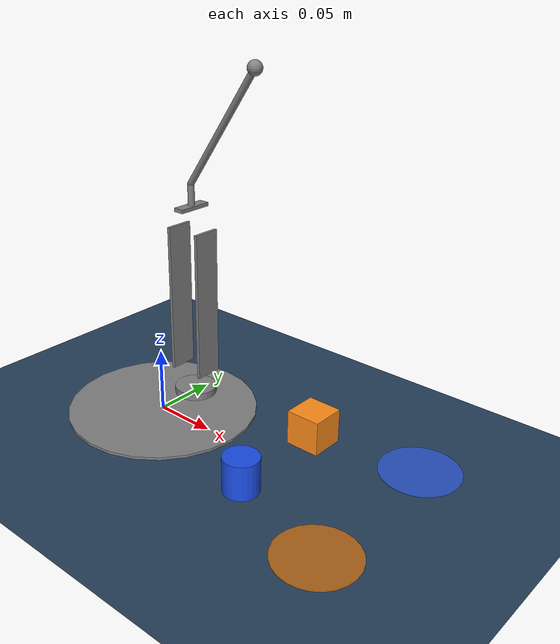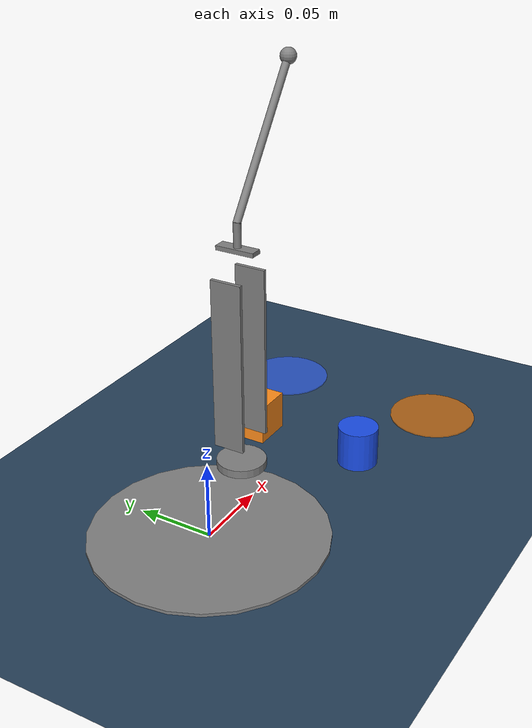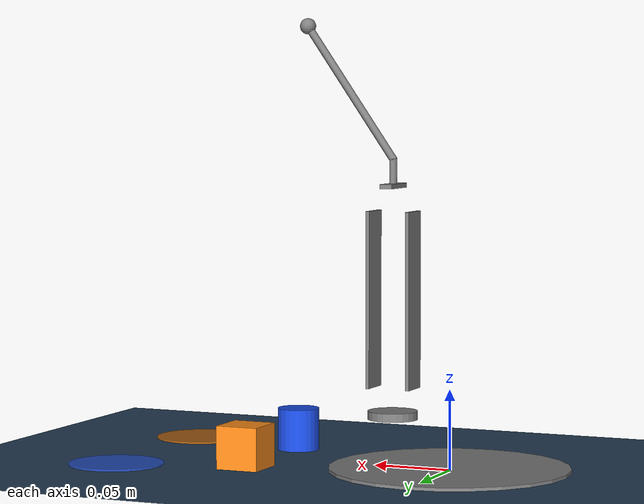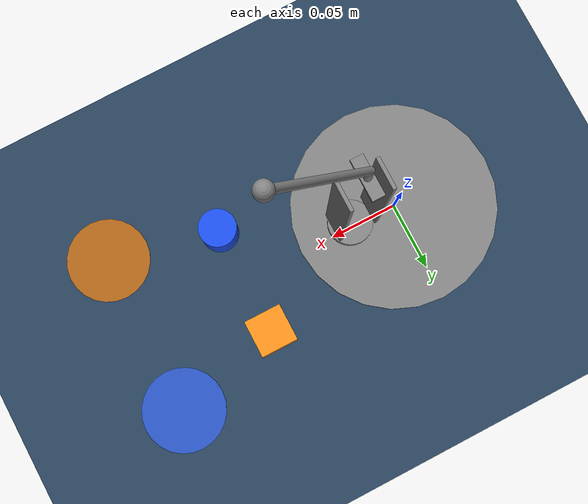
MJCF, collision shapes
<mujoco model="scene_sorting">
    <include file="robot.xml" />

    <visual>
        <headlight diffuse="0.6 0.6 0.6" ambient="0.3 0.3 0.3" specular="0 0 0" />
        <rgba haze="0.15 0.25 0.35 1" />
        <global azimuth="160" elevation="-20" />
    </visual>

    <asset>
        <texture type="skybox" builtin="gradient" rgb1="0.3 0.5 0.7" rgb2="0 0 0"
            width="512" height="3072" />
        <texture type="2d" name="groundplane" builtin="checker" mark="edge"
            rgb1="0.2 0.3 0.4" rgb2="0.1 0.2 0.3" markrgb="0.8 0.8 0.8"
            width="300" height="300" />
        <material name="groundplane" texture="groundplane" texuniform="true" texrepeat="5 5"
            reflectance="0.2" />
        <!-- Zone cible pour le cube (orange) -->
        <material name="goal_cube_mat" rgba="1 0.5 0.0 0.65" />
        <!-- Zone cible pour le cylindre (bleu) -->
        <material name="goal_cylinder_mat" rgba="0.2 0.4 1.0 0.65" />
        <!-- Cube PLA (orange) -->
        <material name="cube_mat" rgba="1 0.55 0.1 1" />
        <!-- Cylindre PLA (bleu) -->
        <material name="cylinder_mat" rgba="0.1 0.3 0.9 1" />
    </asset>

    <worldbody>
        <light pos="0 0 3.5" dir="0 0 -1" directional="true" />
        <geom name="floor" size="0 0 0.05" pos="0 0 0" type="plane"
            material="groundplane" />

        <!-- Zone cible du cube : disque orange -->
        <body name="goal_cube_marker" mocap="true" pos="0.20 -0.06 0.0005">
            <geom type="cylinder" size="0.03 0.0005" material="goal_cube_mat"
                contype="0" conaffinity="0" group="2" />
        </body>

        <!-- Zone cible du cylindre : disque bleu -->
        <body name="goal_cylinder_marker" mocap="true" pos="0.20 0.06 0.0005">
            <geom type="cylinder" size="0.03 0.0005" material="goal_cylinder_mat"
                contype="0" conaffinity="0" group="2" />
        </body>

        <!-- Cube 27x27x27 mm, masse 5 g (PLA) -->
        <body name="cube" pos="0.12 0.04 0.0135">
            <freejoint name="cube_free" />
            <inertial pos="0 0 0" mass="0.005"
                diaginertia="6.075e-7 6.075e-7 6.075e-7" />
            <geom name="cube_geom" type="box" size="0.0135 0.0135 0.0135"
                material="cube_mat" friction="0.6 0.02 0.001" />
        </body>

        <!-- Cylindre h=27mm, r=13.5mm, masse 5 g (PLA) -->
        <!-- Inertie cylindre plein : Ixx=Iyy = m*(3r²+h²)/12, Izz = m*r²/2 -->
        <!-- Ixx = 0.005*(3*0.0135² + 0.027²)/12 ≈ 5.316e-7 -->
        <!-- Izz = 0.005*0.0135²/2 ≈ 4.556e-7 -->
        <body name="cylinder" pos="0.12 -0.04 0.0135">
            <freejoint name="cylinder_free" />
            <inertial pos="0 0 0" mass="0.005"
                diaginertia="5.316e-7 5.316e-7 4.556e-7" />
            <geom name="cylinder_geom" type="cylinder" size="0.0135 0.0135"
                material="cylinder_mat" friction="0.6 0.02 0.001" />
        </body>
    </worldbody>
</mujoco>

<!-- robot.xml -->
<!-- Generated using onshape-to-robot -->
<!-- Onshape https://cad.onshape.com/documents/9cd2d37f10a20c963aa8c3b1/w/751e7ec4f0185e2cc133f396/e/9a387e7c90ee018179d50e3b -->
<mujoco model="3dofs_model">
  <compiler angle="radian" meshdir="." autolimits="true"/>
  <default>
    <default class="3dofs_model">
      <position kp="0.0834356288486003" forcerange="-0.413195026823429 0.413195026823429"/>
      <joint damping="0.030412360296431" frictionloss="0.017508851112988427" armature="0.001102777708135709"/>
      <default class="visual">
        <geom type="mesh" contype="0" conaffinity="0" group="2"/>
      </default>
      <default class="collision">
        <geom group="3"/>
      </default>
    </default>
  </default>
  <worldbody>
    <!-- Link base -->
    <body name="base" pos="0 0 0" quat="1 0 0 0" childclass="3dofs_model">
      <inertial pos="0.0139692 -3.07612e-05 0.0062903" mass="0.0693" fullinertia="7.26197e-05 0.000101787 0.000164149 -9.3971e-08 -1.04905e-05 -6.072e-09"/>
      <!-- Part disk_support -->
      <geom class="collision" pos="-1.3605e-08 0 0.00105" quat="0.707107 0 0 0.707107" type="cylinder" size="0.075 0.00105"/>
      <!-- Part base -->
      <!-- Part xl_320 -->
      <!-- Part base_parts -->
      <geom type="mesh" class="visual" pos="0.0139692 -3.07612e-05 0.0062903" quat="1 0 0 0" mesh="base_visual" material="base_visual_material"/>
      <!-- Link u_part -->
      <body name="u_part" pos="0.0378816 -0 0.0327" quat="0.707107 -0 0 -0.707107">
        <!-- Joint from base to u_part -->
        <joint axis="0 0 1" name="1" type="hinge" range="-2.6179938779914944 2.6179938779914944"/>
        <inertial pos="-7.99857e-05 2.24259e-06 0.00582339" mass="0.00516" fullinertia="7.13166e-07 1.22939e-06 1.09307e-06 -2.2e-11 6.8e-09 -1.91e-10"/>
        <!-- Part u_part -->
        <geom class="collision" pos="0 0 -0.0004" quat="1 0 0 -0" type="cylinder" size="0.0156339 0.0026"/>
        <!-- Part u_part_parts -->
        <geom type="mesh" class="visual" pos="-7.99857e-05 2.24259e-06 0.00582339" quat="0.707107 0 -0 0.707107" mesh="u_part_visual" material="u_part_visual_material"/>
        <!-- Link segment_1 -->
        <body name="segment_1" pos="-0.0149 0 0.0223" quat="0.5 0.5 0.5 0.5">
          <!-- Joint from u_part to segment_1 -->
          <joint axis="0 0 1" name="2" type="hinge" range="-1.570796326794894 1.5707963267948992"/>
          <inertial pos="0 0.049 0.0146105" mass="0.04268" fullinertia="7.27828e-05 4.90297e-06 7.35398e-05 -0 0 0"/>
          <!-- Part plate -->
          <geom class="collision" pos="-0.01315 0.049 0.015" quat="0.5 0.5 -0.5 -0.5" type="box" size="0.055 0.01 0.00115"/>
          <!-- Part xl_320_2 -->
          <!-- Part plate_2 -->
          <geom class="collision" pos="0.01315 0.049 0.015" quat="0.5 0.5 -0.5 -0.5" type="box" size="0.055 0.01 0.00115"/>
          <!-- Part xl_320_3 -->
          <!-- Part segment_1_parts -->
          <geom type="mesh" class="visual" pos="0 0.049 0.0146105" quat="0.707107 -0.707107 -0 0" mesh="segment_1_visual" material="segment_1_visual_material"/>
          <!-- Link end_effector_2 -->
          <body name="end_effector_2" pos="0 0.098 -0" quat="0 -1 0 0">
            <!-- Joint from segment_1 to end_effector_2 -->
            <joint axis="0 0 1" name="3" type="hinge" range="-2.146754979953053 2.146754979952998"/>
            <inertial pos="0.0129719 -0.0435248 -0.014834" mass="0.00579" fullinertia="8.93251e-06 2.81221e-06 1.06042e-05 4.05651e-06 4.958e-09 -1.6637e-08"/>
            <!-- Part end_effector_2 -->
            <geom class="collision" pos="0 -0.0215 -0.0149" quat="0.5 -0.5 -0.5 -0.5" type="box" size="0.0125 0.0039 0.0014"/>
            <geom class="collision" pos="0.0573576 -0.119815 -0.0149" quat="0.5 -0.5 -0.5 -0.5" type="sphere" size="0.005"/>
            <geom class="collision" pos="0 -0.0299 -0.0149" quat="0.5 -0.5 -0.5 -0.5" type="cylinder" size="0.0024 0.0085"/>
            <geom class="collision" pos="0.0277546 -0.0775407 -0.0149" quat="0.627211 -0.326506 -0.627211 -0.326506" type="cylinder" size="0.0024 0.049"/>
            <!-- Part end_effector_2_parts -->
            <geom type="mesh" class="visual" pos="0.0129719 -0.0435248 -0.014834" quat="0.707107 0.707107 -0 -0" mesh="end_effector_2_visual" material="end_effector_2_visual_material"/>
            <!-- Frame end_effector -->
            <site group="3" name="end_effector" pos="0.0573576 -0.119815 -0.0149" quat="0.67438 0.67438 0.212631 0.212631"/>
          </body>
        </body>
      </body>
    </body>
  </worldbody>
  <asset>
    <mesh file="merged/segment_1_visual.stl"/>
    <mesh file="merged/end_effector_2_visual.stl"/>
    <mesh file="merged/base_visual.stl"/>
    <mesh file="merged/u_part_visual.stl"/>
    <material name="base_visual_material" rgba="0.887333 0.753501 0.590471 1"/>
    <material name="u_part_visual_material" rgba="0.615686 0.811765 0.929412 1"/>
    <material name="segment_1_visual_material" rgba="0.683202 0.725836 0.751416 1"/>
    <material name="end_effector_2_visual_material" rgba="0.615686 0.811765 0.929412 1"/>
  </asset>
  <actuator>
    <position class="3dofs_model" name="1" joint="1" ctrlrange="-2.6179938779914944 2.6179938779914944"/>
    <position class="3dofs_model" name="2" joint="2" ctrlrange="-2.6179938779914944 2.6179938779914944"/>
    <position class="3dofs_model" name="3" joint="3" ctrlrange="-2.6179938779914944 2.6179938779914944"/>
  </actuator>
  <equality/>
</mujoco>
